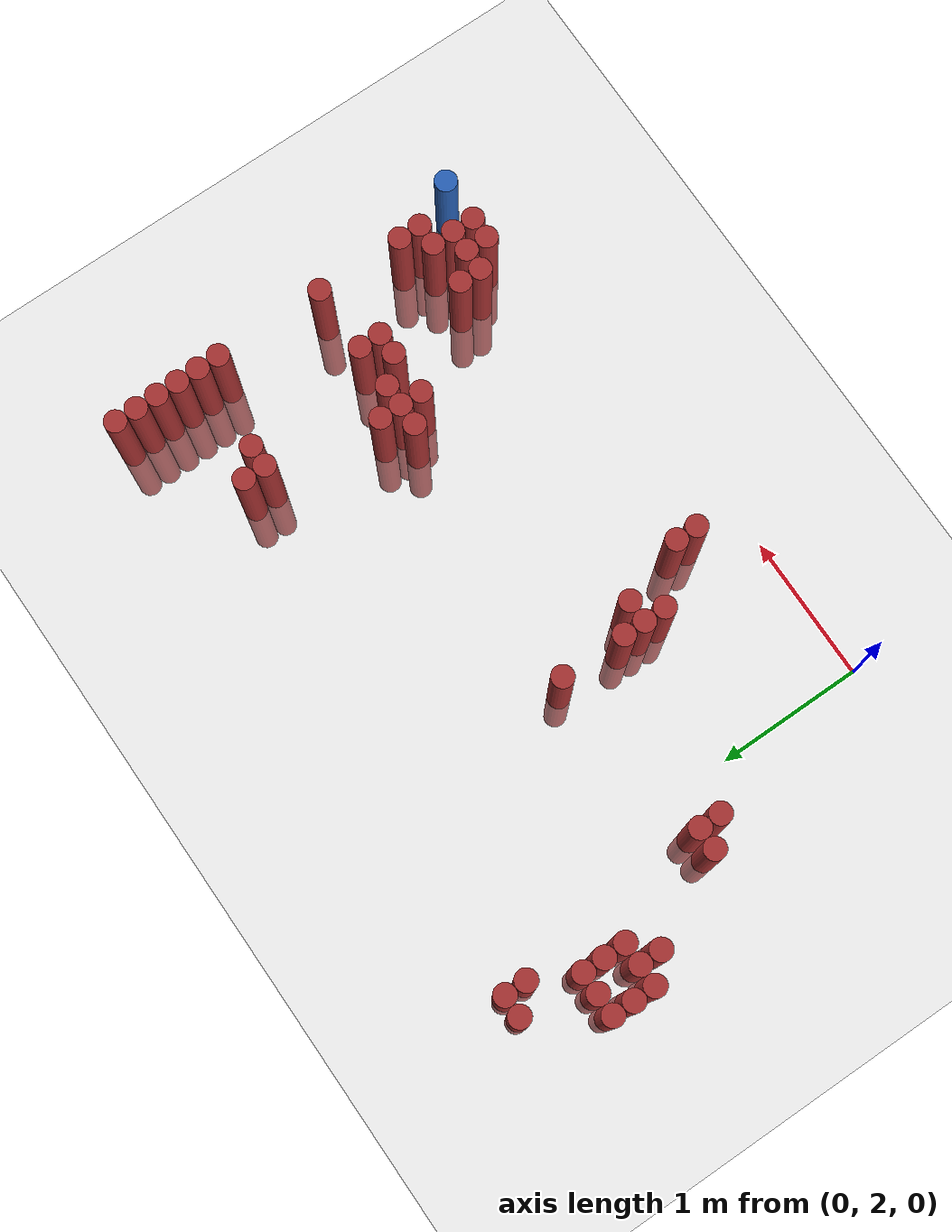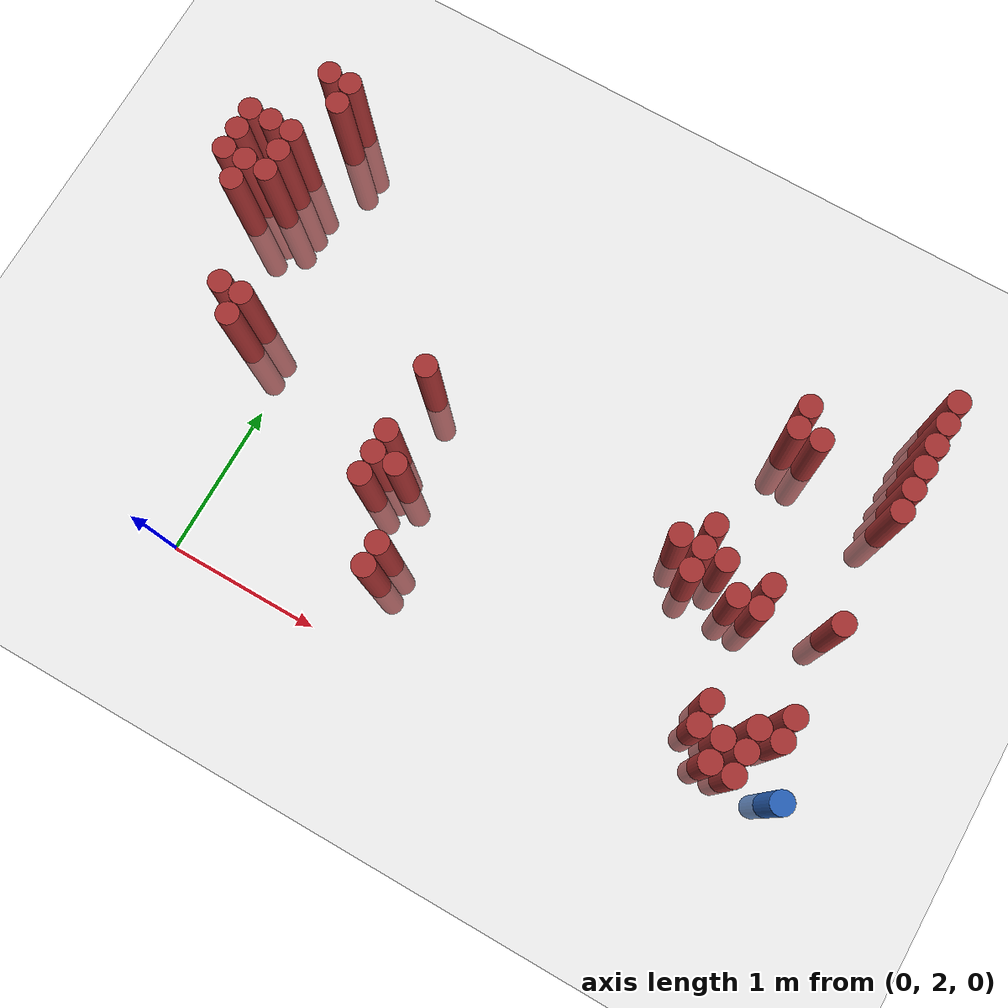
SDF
<sdf version="1.6">
 <world name="default">
  <model name="ground_plane">
   <static>1</static>
   <link name="link">
    <collision name="collision">
     <geometry><plane><normal>0 0 1</normal><size>100 100</size></plane></geometry>
     <surface><friction><ode><mu>100</mu><mu2>50</mu2></ode></friction></surface>
    </collision>
    <visual name="visual">
     <cast_shadows>0</cast_shadows>
     <geometry><plane><normal>0 0 1</normal><size>100 100</size></plane></geometry>
     <material>
      <script><uri>file://media/materials/scripts/gazebo.material</uri><name>Gazebo/Grey</name></script>
     </material>
    </visual>
   </link>
  </model>
  <model name="unit_cylinder_146">
   <static>1</static>
   <pose>3.925000 2.425000 0.000000 0.000000 0.000000 0.000000</pose>
   <link name="link">
    <inertial>
     <mass>1</mass>
     <inertia><ixx>0.145833</ixx><ixy>0</ixy><ixz>0</ixz><iyy>0.145833</iyy><iyz>0</iyz><izz>0.125</izz></inertia>
    </inertial>
    <collision name="collision">
     <geometry><cylinder><radius>0.075000</radius><length>1.5</length></cylinder></geometry>
    </collision>
    <visual name="visual">
     <geometry><cylinder><radius>0.075000</radius><length>1.5</length></cylinder></geometry>
     <material>
      <ambient>0.152000 0.379000 0.720000 1</ambient>
      <diffuse>0.152000 0.379000 0.720000 1</diffuse>
     </material>
     <material>
      <script><name>Gazebo/Grey</name><uri>file://media/materials/scripts/gazebo.material</uri></script>
     </material>
    </visual>
   </link>
  </model>
  <model name="unit_cylinder_313">
   <static>1</static>
   <pose>-0.875000 4.225000 0.000000 0.000000 0.000000 0.000000</pose>
   <link name="link">
    <inertial>
     <mass>1</mass>
     <inertia><ixx>0.145833</ixx><ixy>0</ixy><ixz>0</ixz><iyy>0.145833</iyy><iyz>0</iyz><izz>0.125</izz></inertia>
    </inertial>
    <collision name="collision">
     <geometry><cylinder><radius>0.075000</radius><length>1.5</length></cylinder></geometry>
    </collision>
    <visual name="visual">
     <geometry><cylinder><radius>0.075000</radius><length>1.5</length></cylinder></geometry>
     <material>
      <ambient>0.648000 0.192000 0.192000 1</ambient>
      <diffuse>0.648000 0.192000 0.192000 1</diffuse>
     </material>
     <material>
      <script><name>Gazebo/Grey</name><uri>file://media/materials/scripts/gazebo.material</uri></script>
     </material>
    </visual>
   </link>
  </model>
  <model name="unit_cylinder_314">
   <static>1</static>
   <pose>-0.875000 4.375000 0.000000 0.000000 0.000000 0.000000</pose>
   <link name="link">
    <inertial>
     <mass>1</mass>
     <inertia><ixx>0.145833</ixx><ixy>0</ixy><ixz>0</ixz><iyy>0.145833</iyy><iyz>0</iyz><izz>0.125</izz></inertia>
    </inertial>
    <collision name="collision">
     <geometry><cylinder><radius>0.075000</radius><length>1.5</length></cylinder></geometry>
    </collision>
    <visual name="visual">
     <geometry><cylinder><radius>0.075000</radius><length>1.5</length></cylinder></geometry>
     <material>
      <ambient>0.648000 0.192000 0.192000 1</ambient>
      <diffuse>0.648000 0.192000 0.192000 1</diffuse>
     </material>
     <material>
      <script><name>Gazebo/Grey</name><uri>file://media/materials/scripts/gazebo.material</uri></script>
     </material>
    </visual>
   </link>
  </model>
  <model name="unit_cylinder_315">
   <static>1</static>
   <pose>-0.875000 4.525000 0.000000 0.000000 0.000000 0.000000</pose>
   <link name="link">
    <inertial>
     <mass>1</mass>
     <inertia><ixx>0.145833</ixx><ixy>0</ixy><ixz>0</ixz><iyy>0.145833</iyy><iyz>0</iyz><izz>0.125</izz></inertia>
    </inertial>
    <collision name="collision">
     <geometry><cylinder><radius>0.075000</radius><length>1.5</length></cylinder></geometry>
    </collision>
    <visual name="visual">
     <geometry><cylinder><radius>0.075000</radius><length>1.5</length></cylinder></geometry>
     <material>
      <ambient>0.648000 0.192000 0.192000 1</ambient>
      <diffuse>0.648000 0.192000 0.192000 1</diffuse>
     </material>
     <material>
      <script><name>Gazebo/Grey</name><uri>file://media/materials/scripts/gazebo.material</uri></script>
     </material>
    </visual>
   </link>
  </model>
  <model name="unit_cylinder_318">
   <static>1</static>
   <pose>-0.725000 4.075000 0.000000 0.000000 0.000000 0.000000</pose>
   <link name="link">
    <inertial>
     <mass>1</mass>
     <inertia><ixx>0.145833</ixx><ixy>0</ixy><ixz>0</ixz><iyy>0.145833</iyy><iyz>0</iyz><izz>0.125</izz></inertia>
    </inertial>
    <collision name="collision">
     <geometry><cylinder><radius>0.075000</radius><length>1.5</length></cylinder></geometry>
    </collision>
    <visual name="visual">
     <geometry><cylinder><radius>0.075000</radius><length>1.5</length></cylinder></geometry>
     <material>
      <ambient>0.648000 0.192000 0.192000 1</ambient>
      <diffuse>0.648000 0.192000 0.192000 1</diffuse>
     </material>
     <material>
      <script><name>Gazebo/Grey</name><uri>file://media/materials/scripts/gazebo.material</uri></script>
     </material>
    </visual>
   </link>
  </model>
  <model name="unit_cylinder_319">
   <static>1</static>
   <pose>-0.725000 4.225000 0.000000 0.000000 0.000000 0.000000</pose>
   <link name="link">
    <inertial>
     <mass>1</mass>
     <inertia><ixx>0.145833</ixx><ixy>0</ixy><ixz>0</ixz><iyy>0.145833</iyy><iyz>0</iyz><izz>0.125</izz></inertia>
    </inertial>
    <collision name="collision">
     <geometry><cylinder><radius>0.075000</radius><length>1.5</length></cylinder></geometry>
    </collision>
    <visual name="visual">
     <geometry><cylinder><radius>0.075000</radius><length>1.5</length></cylinder></geometry>
     <material>
      <ambient>0.648000 0.192000 0.192000 1</ambient>
      <diffuse>0.648000 0.192000 0.192000 1</diffuse>
     </material>
     <material>
      <script><name>Gazebo/Grey</name><uri>file://media/materials/scripts/gazebo.material</uri></script>
     </material>
    </visual>
   </link>
  </model>
  <model name="unit_cylinder_320">
   <static>1</static>
   <pose>-0.725000 4.525000 0.000000 0.000000 0.000000 0.000000</pose>
   <link name="link">
    <inertial>
     <mass>1</mass>
     <inertia><ixx>0.145833</ixx><ixy>0</ixy><ixz>0</ixz><iyy>0.145833</iyy><iyz>0</iyz><izz>0.125</izz></inertia>
    </inertial>
    <collision name="collision">
     <geometry><cylinder><radius>0.075000</radius><length>1.5</length></cylinder></geometry>
    </collision>
    <visual name="visual">
     <geometry><cylinder><radius>0.075000</radius><length>1.5</length></cylinder></geometry>
     <material>
      <ambient>0.648000 0.192000 0.192000 1</ambient>
      <diffuse>0.648000 0.192000 0.192000 1</diffuse>
     </material>
     <material>
      <script><name>Gazebo/Grey</name><uri>file://media/materials/scripts/gazebo.material</uri></script>
     </material>
    </visual>
   </link>
  </model>
  <model name="unit_cylinder_323">
   <static>1</static>
   <pose>-0.575000 4.225000 0.000000 0.000000 0.000000 0.000000</pose>
   <link name="link">
    <inertial>
     <mass>1</mass>
     <inertia><ixx>0.145833</ixx><ixy>0</ixy><ixz>0</ixz><iyy>0.145833</iyy><iyz>0</iyz><izz>0.125</izz></inertia>
    </inertial>
    <collision name="collision">
     <geometry><cylinder><radius>0.075000</radius><length>1.5</length></cylinder></geometry>
    </collision>
    <visual name="visual">
     <geometry><cylinder><radius>0.075000</radius><length>1.5</length></cylinder></geometry>
     <material>
      <ambient>0.648000 0.192000 0.192000 1</ambient>
      <diffuse>0.648000 0.192000 0.192000 1</diffuse>
     </material>
     <material>
      <script><name>Gazebo/Grey</name><uri>file://media/materials/scripts/gazebo.material</uri></script>
     </material>
    </visual>
   </link>
  </model>
  <model name="unit_cylinder_324">
   <static>1</static>
   <pose>-0.575000 4.375000 0.000000 0.000000 0.000000 0.000000</pose>
   <link name="link">
    <inertial>
     <mass>1</mass>
     <inertia><ixx>0.145833</ixx><ixy>0</ixy><ixz>0</ixz><iyy>0.145833</iyy><iyz>0</iyz><izz>0.125</izz></inertia>
    </inertial>
    <collision name="collision">
     <geometry><cylinder><radius>0.075000</radius><length>1.5</length></cylinder></geometry>
    </collision>
    <visual name="visual">
     <geometry><cylinder><radius>0.075000</radius><length>1.5</length></cylinder></geometry>
     <material>
      <ambient>0.648000 0.192000 0.192000 1</ambient>
      <diffuse>0.648000 0.192000 0.192000 1</diffuse>
     </material>
     <material>
      <script><name>Gazebo/Grey</name><uri>file://media/materials/scripts/gazebo.material</uri></script>
     </material>
    </visual>
   </link>
  </model>
  <model name="unit_cylinder_325">
   <static>1</static>
   <pose>-0.575000 4.525000 0.000000 0.000000 0.000000 0.000000</pose>
   <link name="link">
    <inertial>
     <mass>1</mass>
     <inertia><ixx>0.145833</ixx><ixy>0</ixy><ixz>0</ixz><iyy>0.145833</iyy><iyz>0</iyz><izz>0.125</izz></inertia>
    </inertial>
    <collision name="collision">
     <geometry><cylinder><radius>0.075000</radius><length>1.5</length></cylinder></geometry>
    </collision>
    <visual name="visual">
     <geometry><cylinder><radius>0.075000</radius><length>1.5</length></cylinder></geometry>
     <material>
      <ambient>0.648000 0.192000 0.192000 1</ambient>
      <diffuse>0.648000 0.192000 0.192000 1</diffuse>
     </material>
     <material>
      <script><name>Gazebo/Grey</name><uri>file://media/materials/scripts/gazebo.material</uri></script>
     </material>
    </visual>
   </link>
  </model>
  <model name="unit_cylinder_326">
   <static>1</static>
   <pose>-0.575000 4.975000 0.000000 0.000000 0.000000 0.000000</pose>
   <link name="link">
    <inertial>
     <mass>1</mass>
     <inertia><ixx>0.145833</ixx><ixy>0</ixy><ixz>0</ixz><iyy>0.145833</iyy><iyz>0</iyz><izz>0.125</izz></inertia>
    </inertial>
    <collision name="collision">
     <geometry><cylinder><radius>0.075000</radius><length>1.5</length></cylinder></geometry>
    </collision>
    <visual name="visual">
     <geometry><cylinder><radius>0.075000</radius><length>1.5</length></cylinder></geometry>
     <material>
      <ambient>0.648000 0.192000 0.192000 1</ambient>
      <diffuse>0.648000 0.192000 0.192000 1</diffuse>
     </material>
     <material>
      <script><name>Gazebo/Grey</name><uri>file://media/materials/scripts/gazebo.material</uri></script>
     </material>
    </visual>
   </link>
  </model>
  <model name="unit_cylinder_327">
   <static>1</static>
   <pose>-0.425000 3.475000 0.000000 0.000000 0.000000 0.000000</pose>
   <link name="link">
    <inertial>
     <mass>1</mass>
     <inertia><ixx>0.145833</ixx><ixy>0</ixy><ixz>0</ixz><iyy>0.145833</iyy><iyz>0</iyz><izz>0.125</izz></inertia>
    </inertial>
    <collision name="collision">
     <geometry><cylinder><radius>0.075000</radius><length>1.5</length></cylinder></geometry>
    </collision>
    <visual name="visual">
     <geometry><cylinder><radius>0.075000</radius><length>1.5</length></cylinder></geometry>
     <material>
      <ambient>0.648000 0.192000 0.192000 1</ambient>
      <diffuse>0.648000 0.192000 0.192000 1</diffuse>
     </material>
     <material>
      <script><name>Gazebo/Grey</name><uri>file://media/materials/scripts/gazebo.material</uri></script>
     </material>
    </visual>
   </link>
  </model>
  <model name="unit_cylinder_328">
   <static>1</static>
   <pose>-0.425000 4.825000 0.000000 0.000000 0.000000 0.000000</pose>
   <link name="link">
    <inertial>
     <mass>1</mass>
     <inertia><ixx>0.145833</ixx><ixy>0</ixy><ixz>0</ixz><iyy>0.145833</iyy><iyz>0</iyz><izz>0.125</izz></inertia>
    </inertial>
    <collision name="collision">
     <geometry><cylinder><radius>0.075000</radius><length>1.5</length></cylinder></geometry>
    </collision>
    <visual name="visual">
     <geometry><cylinder><radius>0.075000</radius><length>1.5</length></cylinder></geometry>
     <material>
      <ambient>0.648000 0.192000 0.192000 1</ambient>
      <diffuse>0.648000 0.192000 0.192000 1</diffuse>
     </material>
     <material>
      <script><name>Gazebo/Grey</name><uri>file://media/materials/scripts/gazebo.material</uri></script>
     </material>
    </visual>
   </link>
  </model>
  <model name="unit_cylinder_329">
   <static>1</static>
   <pose>-0.425000 4.975000 0.000000 0.000000 0.000000 0.000000</pose>
   <link name="link">
    <inertial>
     <mass>1</mass>
     <inertia><ixx>0.145833</ixx><ixy>0</ixy><ixz>0</ixz><iyy>0.145833</iyy><iyz>0</iyz><izz>0.125</izz></inertia>
    </inertial>
    <collision name="collision">
     <geometry><cylinder><radius>0.075000</radius><length>1.5</length></cylinder></geometry>
    </collision>
    <visual name="visual">
     <geometry><cylinder><radius>0.075000</radius><length>1.5</length></cylinder></geometry>
     <material>
      <ambient>0.648000 0.192000 0.192000 1</ambient>
      <diffuse>0.648000 0.192000 0.192000 1</diffuse>
     </material>
     <material>
      <script><name>Gazebo/Grey</name><uri>file://media/materials/scripts/gazebo.material</uri></script>
     </material>
    </visual>
   </link>
  </model>
  <model name="unit_cylinder_332">
   <static>1</static>
   <pose>-0.275000 3.325000 0.000000 0.000000 0.000000 0.000000</pose>
   <link name="link">
    <inertial>
     <mass>1</mass>
     <inertia><ixx>0.145833</ixx><ixy>0</ixy><ixz>0</ixz><iyy>0.145833</iyy><iyz>0</iyz><izz>0.125</izz></inertia>
    </inertial>
    <collision name="collision">
     <geometry><cylinder><radius>0.075000</radius><length>1.5</length></cylinder></geometry>
    </collision>
    <visual name="visual">
     <geometry><cylinder><radius>0.075000</radius><length>1.5</length></cylinder></geometry>
     <material>
      <ambient>0.648000 0.192000 0.192000 1</ambient>
      <diffuse>0.648000 0.192000 0.192000 1</diffuse>
     </material>
     <material>
      <script><name>Gazebo/Grey</name><uri>file://media/materials/scripts/gazebo.material</uri></script>
     </material>
    </visual>
   </link>
  </model>
  <model name="unit_cylinder_333">
   <static>1</static>
   <pose>-0.275000 3.475000 0.000000 0.000000 0.000000 0.000000</pose>
   <link name="link">
    <inertial>
     <mass>1</mass>
     <inertia><ixx>0.145833</ixx><ixy>0</ixy><ixz>0</ixz><iyy>0.145833</iyy><iyz>0</iyz><izz>0.125</izz></inertia>
    </inertial>
    <collision name="collision">
     <geometry><cylinder><radius>0.075000</radius><length>1.5</length></cylinder></geometry>
    </collision>
    <visual name="visual">
     <geometry><cylinder><radius>0.075000</radius><length>1.5</length></cylinder></geometry>
     <material>
      <ambient>0.648000 0.192000 0.192000 1</ambient>
      <diffuse>0.648000 0.192000 0.192000 1</diffuse>
     </material>
     <material>
      <script><name>Gazebo/Grey</name><uri>file://media/materials/scripts/gazebo.material</uri></script>
     </material>
    </visual>
   </link>
  </model>
  <model name="unit_cylinder_349">
   <static>1</static>
   <pose>0.925000 2.875000 0.000000 0.000000 0.000000 0.000000</pose>
   <link name="link">
    <inertial>
     <mass>1</mass>
     <inertia><ixx>0.145833</ixx><ixy>0</ixy><ixz>0</ixz><iyy>0.145833</iyy><iyz>0</iyz><izz>0.125</izz></inertia>
    </inertial>
    <collision name="collision">
     <geometry><cylinder><radius>0.075000</radius><length>1.5</length></cylinder></geometry>
    </collision>
    <visual name="visual">
     <geometry><cylinder><radius>0.075000</radius><length>1.5</length></cylinder></geometry>
     <material>
      <ambient>0.648000 0.192000 0.192000 1</ambient>
      <diffuse>0.648000 0.192000 0.192000 1</diffuse>
     </material>
     <material>
      <script><name>Gazebo/Grey</name><uri>file://media/materials/scripts/gazebo.material</uri></script>
     </material>
    </visual>
   </link>
  </model>
  <model name="unit_cylinder_350">
   <static>1</static>
   <pose>0.925000 3.025000 0.000000 0.000000 0.000000 0.000000</pose>
   <link name="link">
    <inertial>
     <mass>1</mass>
     <inertia><ixx>0.145833</ixx><ixy>0</ixy><ixz>0</ixz><iyy>0.145833</iyy><iyz>0</iyz><izz>0.125</izz></inertia>
    </inertial>
    <collision name="collision">
     <geometry><cylinder><radius>0.075000</radius><length>1.5</length></cylinder></geometry>
    </collision>
    <visual name="visual">
     <geometry><cylinder><radius>0.075000</radius><length>1.5</length></cylinder></geometry>
     <material>
      <ambient>0.648000 0.192000 0.192000 1</ambient>
      <diffuse>0.648000 0.192000 0.192000 1</diffuse>
     </material>
     <material>
      <script><name>Gazebo/Grey</name><uri>file://media/materials/scripts/gazebo.material</uri></script>
     </material>
    </visual>
   </link>
  </model>
  <model name="unit_cylinder_351">
   <static>1</static>
   <pose>0.925000 3.175000 0.000000 0.000000 0.000000 0.000000</pose>
   <link name="link">
    <inertial>
     <mass>1</mass>
     <inertia><ixx>0.145833</ixx><ixy>0</ixy><ixz>0</ixz><iyy>0.145833</iyy><iyz>0</iyz><izz>0.125</izz></inertia>
    </inertial>
    <collision name="collision">
     <geometry><cylinder><radius>0.075000</radius><length>1.5</length></cylinder></geometry>
    </collision>
    <visual name="visual">
     <geometry><cylinder><radius>0.075000</radius><length>1.5</length></cylinder></geometry>
     <material>
      <ambient>0.648000 0.192000 0.192000 1</ambient>
      <diffuse>0.648000 0.192000 0.192000 1</diffuse>
     </material>
     <material>
      <script><name>Gazebo/Grey</name><uri>file://media/materials/scripts/gazebo.material</uri></script>
     </material>
    </visual>
   </link>
  </model>
  <model name="unit_cylinder_352">
   <static>1</static>
   <pose>0.925000 3.625000 0.000000 0.000000 0.000000 0.000000</pose>
   <link name="link">
    <inertial>
     <mass>1</mass>
     <inertia><ixx>0.145833</ixx><ixy>0</ixy><ixz>0</ixz><iyy>0.145833</iyy><iyz>0</iyz><izz>0.125</izz></inertia>
    </inertial>
    <collision name="collision">
     <geometry><cylinder><radius>0.075000</radius><length>1.5</length></cylinder></geometry>
    </collision>
    <visual name="visual">
     <geometry><cylinder><radius>0.075000</radius><length>1.5</length></cylinder></geometry>
     <material>
      <ambient>0.648000 0.192000 0.192000 1</ambient>
      <diffuse>0.648000 0.192000 0.192000 1</diffuse>
     </material>
     <material>
      <script><name>Gazebo/Grey</name><uri>file://media/materials/scripts/gazebo.material</uri></script>
     </material>
    </visual>
   </link>
  </model>
  <model name="unit_cylinder_361">
   <static>1</static>
   <pose>1.075000 3.025000 0.000000 0.000000 0.000000 0.000000</pose>
   <link name="link">
    <inertial>
     <mass>1</mass>
     <inertia><ixx>0.145833</ixx><ixy>0</ixy><ixz>0</ixz><iyy>0.145833</iyy><iyz>0</iyz><izz>0.125</izz></inertia>
    </inertial>
    <collision name="collision">
     <geometry><cylinder><radius>0.075000</radius><length>1.5</length></cylinder></geometry>
    </collision>
    <visual name="visual">
     <geometry><cylinder><radius>0.075000</radius><length>1.5</length></cylinder></geometry>
     <material>
      <ambient>0.648000 0.192000 0.192000 1</ambient>
      <diffuse>0.648000 0.192000 0.192000 1</diffuse>
     </material>
     <material>
      <script><name>Gazebo/Grey</name><uri>file://media/materials/scripts/gazebo.material</uri></script>
     </material>
    </visual>
   </link>
  </model>
  <model name="unit_cylinder_369">
   <static>1</static>
   <pose>1.225000 2.425000 0.000000 0.000000 0.000000 0.000000</pose>
   <link name="link">
    <inertial>
     <mass>1</mass>
     <inertia><ixx>0.145833</ixx><ixy>0</ixy><ixz>0</ixz><iyy>0.145833</iyy><iyz>0</iyz><izz>0.125</izz></inertia>
    </inertial>
    <collision name="collision">
     <geometry><cylinder><radius>0.075000</radius><length>1.5</length></cylinder></geometry>
    </collision>
    <visual name="visual">
     <geometry><cylinder><radius>0.075000</radius><length>1.5</length></cylinder></geometry>
     <material>
      <ambient>0.648000 0.192000 0.192000 1</ambient>
      <diffuse>0.648000 0.192000 0.192000 1</diffuse>
     </material>
     <material>
      <script><name>Gazebo/Grey</name><uri>file://media/materials/scripts/gazebo.material</uri></script>
     </material>
    </visual>
   </link>
  </model>
  <model name="unit_cylinder_370">
   <static>1</static>
   <pose>1.225000 2.575000 0.000000 0.000000 0.000000 0.000000</pose>
   <link name="link">
    <inertial>
     <mass>1</mass>
     <inertia><ixx>0.145833</ixx><ixy>0</ixy><ixz>0</ixz><iyy>0.145833</iyy><iyz>0</iyz><izz>0.125</izz></inertia>
    </inertial>
    <collision name="collision">
     <geometry><cylinder><radius>0.075000</radius><length>1.5</length></cylinder></geometry>
    </collision>
    <visual name="visual">
     <geometry><cylinder><radius>0.075000</radius><length>1.5</length></cylinder></geometry>
     <material>
      <ambient>0.648000 0.192000 0.192000 1</ambient>
      <diffuse>0.648000 0.192000 0.192000 1</diffuse>
     </material>
     <material>
      <script><name>Gazebo/Grey</name><uri>file://media/materials/scripts/gazebo.material</uri></script>
     </material>
    </visual>
   </link>
  </model>
  <model name="unit_cylinder_400">
   <static>1</static>
   <pose>2.725000 3.475000 0.000000 0.000000 0.000000 0.000000</pose>
   <link name="link">
    <inertial>
     <mass>1</mass>
     <inertia><ixx>0.145833</ixx><ixy>0</ixy><ixz>0</ixz><iyy>0.145833</iyy><iyz>0</iyz><izz>0.125</izz></inertia>
    </inertial>
    <collision name="collision">
     <geometry><cylinder><radius>0.075000</radius><length>1.5</length></cylinder></geometry>
    </collision>
    <visual name="visual">
     <geometry><cylinder><radius>0.075000</radius><length>1.5</length></cylinder></geometry>
     <material>
      <ambient>0.648000 0.192000 0.192000 1</ambient>
      <diffuse>0.648000 0.192000 0.192000 1</diffuse>
     </material>
     <material>
      <script><name>Gazebo/Grey</name><uri>file://media/materials/scripts/gazebo.material</uri></script>
     </material>
    </visual>
   </link>
  </model>
  <model name="unit_cylinder_404">
   <static>1</static>
   <pose>2.875000 3.325000 0.000000 0.000000 0.000000 0.000000</pose>
   <link name="link">
    <inertial>
     <mass>1</mass>
     <inertia><ixx>0.145833</ixx><ixy>0</ixy><ixz>0</ixz><iyy>0.145833</iyy><iyz>0</iyz><izz>0.125</izz></inertia>
    </inertial>
    <collision name="collision">
     <geometry><cylinder><radius>0.075000</radius><length>1.5</length></cylinder></geometry>
    </collision>
    <visual name="visual">
     <geometry><cylinder><radius>0.075000</radius><length>1.5</length></cylinder></geometry>
     <material>
      <ambient>0.648000 0.192000 0.192000 1</ambient>
      <diffuse>0.648000 0.192000 0.192000 1</diffuse>
     </material>
     <material>
      <script><name>Gazebo/Grey</name><uri>file://media/materials/scripts/gazebo.material</uri></script>
     </material>
    </visual>
   </link>
  </model>
  <model name="unit_cylinder_405">
   <static>1</static>
   <pose>2.875000 3.475000 0.000000 0.000000 0.000000 0.000000</pose>
   <link name="link">
    <inertial>
     <mass>1</mass>
     <inertia><ixx>0.145833</ixx><ixy>0</ixy><ixz>0</ixz><iyy>0.145833</iyy><iyz>0</iyz><izz>0.125</izz></inertia>
    </inertial>
    <collision name="collision">
     <geometry><cylinder><radius>0.075000</radius><length>1.5</length></cylinder></geometry>
    </collision>
    <visual name="visual">
     <geometry><cylinder><radius>0.075000</radius><length>1.5</length></cylinder></geometry>
     <material>
      <ambient>0.648000 0.192000 0.192000 1</ambient>
      <diffuse>0.648000 0.192000 0.192000 1</diffuse>
     </material>
     <material>
      <script><name>Gazebo/Grey</name><uri>file://media/materials/scripts/gazebo.material</uri></script>
     </material>
    </visual>
   </link>
  </model>
  <model name="unit_cylinder_406">
   <static>1</static>
   <pose>2.875000 3.625000 0.000000 0.000000 0.000000 0.000000</pose>
   <link name="link">
    <inertial>
     <mass>1</mass>
     <inertia><ixx>0.145833</ixx><ixy>0</ixy><ixz>0</ixz><iyy>0.145833</iyy><iyz>0</iyz><izz>0.125</izz></inertia>
    </inertial>
    <collision name="collision">
     <geometry><cylinder><radius>0.075000</radius><length>1.5</length></cylinder></geometry>
    </collision>
    <visual name="visual">
     <geometry><cylinder><radius>0.075000</radius><length>1.5</length></cylinder></geometry>
     <material>
      <ambient>0.648000 0.192000 0.192000 1</ambient>
      <diffuse>0.648000 0.192000 0.192000 1</diffuse>
     </material>
     <material>
      <script><name>Gazebo/Grey</name><uri>file://media/materials/scripts/gazebo.material</uri></script>
     </material>
    </visual>
   </link>
  </model>
  <model name="unit_cylinder_408">
   <static>1</static>
   <pose>3.025000 3.475000 0.000000 0.000000 0.000000 0.000000</pose>
   <link name="link">
    <inertial>
     <mass>1</mass>
     <inertia><ixx>0.145833</ixx><ixy>0</ixy><ixz>0</ixz><iyy>0.145833</iyy><iyz>0</iyz><izz>0.125</izz></inertia>
    </inertial>
    <collision name="collision">
     <geometry><cylinder><radius>0.075000</radius><length>1.5</length></cylinder></geometry>
    </collision>
    <visual name="visual">
     <geometry><cylinder><radius>0.075000</radius><length>1.5</length></cylinder></geometry>
     <material>
      <ambient>0.648000 0.192000 0.192000 1</ambient>
      <diffuse>0.648000 0.192000 0.192000 1</diffuse>
     </material>
     <material>
      <script><name>Gazebo/Grey</name><uri>file://media/materials/scripts/gazebo.material</uri></script>
     </material>
    </visual>
   </link>
  </model>
  <model name="unit_cylinder_409">
   <static>1</static>
   <pose>3.025000 4.375000 0.000000 0.000000 0.000000 0.000000</pose>
   <link name="link">
    <inertial>
     <mass>1</mass>
     <inertia><ixx>0.145833</ixx><ixy>0</ixy><ixz>0</ixz><iyy>0.145833</iyy><iyz>0</iyz><izz>0.125</izz></inertia>
    </inertial>
    <collision name="collision">
     <geometry><cylinder><radius>0.075000</radius><length>1.5</length></cylinder></geometry>
    </collision>
    <visual name="visual">
     <geometry><cylinder><radius>0.075000</radius><length>1.5</length></cylinder></geometry>
     <material>
      <ambient>0.648000 0.192000 0.192000 1</ambient>
      <diffuse>0.648000 0.192000 0.192000 1</diffuse>
     </material>
     <material>
      <script><name>Gazebo/Grey</name><uri>file://media/materials/scripts/gazebo.material</uri></script>
     </material>
    </visual>
   </link>
  </model>
  <model name="unit_cylinder_410">
   <static>1</static>
   <pose>3.025000 4.525000 0.000000 0.000000 0.000000 0.000000</pose>
   <link name="link">
    <inertial>
     <mass>1</mass>
     <inertia><ixx>0.145833</ixx><ixy>0</ixy><ixz>0</ixz><iyy>0.145833</iyy><iyz>0</iyz><izz>0.125</izz></inertia>
    </inertial>
    <collision name="collision">
     <geometry><cylinder><radius>0.075000</radius><length>1.5</length></cylinder></geometry>
    </collision>
    <visual name="visual">
     <geometry><cylinder><radius>0.075000</radius><length>1.5</length></cylinder></geometry>
     <material>
      <ambient>0.648000 0.192000 0.192000 1</ambient>
      <diffuse>0.648000 0.192000 0.192000 1</diffuse>
     </material>
     <material>
      <script><name>Gazebo/Grey</name><uri>file://media/materials/scripts/gazebo.material</uri></script>
     </material>
    </visual>
   </link>
  </model>
  <model name="unit_cylinder_412">
   <static>1</static>
   <pose>3.175000 3.325000 0.000000 0.000000 0.000000 0.000000</pose>
   <link name="link">
    <inertial>
     <mass>1</mass>
     <inertia><ixx>0.145833</ixx><ixy>0</ixy><ixz>0</ixz><iyy>0.145833</iyy><iyz>0</iyz><izz>0.125</izz></inertia>
    </inertial>
    <collision name="collision">
     <geometry><cylinder><radius>0.075000</radius><length>1.5</length></cylinder></geometry>
    </collision>
    <visual name="visual">
     <geometry><cylinder><radius>0.075000</radius><length>1.5</length></cylinder></geometry>
     <material>
      <ambient>0.648000 0.192000 0.192000 1</ambient>
      <diffuse>0.648000 0.192000 0.192000 1</diffuse>
     </material>
     <material>
      <script><name>Gazebo/Grey</name><uri>file://media/materials/scripts/gazebo.material</uri></script>
     </material>
    </visual>
   </link>
  </model>
  <model name="unit_cylinder_413">
   <static>1</static>
   <pose>3.175000 4.375000 0.000000 0.000000 0.000000 0.000000</pose>
   <link name="link">
    <inertial>
     <mass>1</mass>
     <inertia><ixx>0.145833</ixx><ixy>0</ixy><ixz>0</ixz><iyy>0.145833</iyy><iyz>0</iyz><izz>0.125</izz></inertia>
    </inertial>
    <collision name="collision">
     <geometry><cylinder><radius>0.075000</radius><length>1.5</length></cylinder></geometry>
    </collision>
    <visual name="visual">
     <geometry><cylinder><radius>0.075000</radius><length>1.5</length></cylinder></geometry>
     <material>
      <ambient>0.648000 0.192000 0.192000 1</ambient>
      <diffuse>0.648000 0.192000 0.192000 1</diffuse>
     </material>
     <material>
      <script><name>Gazebo/Grey</name><uri>file://media/materials/scripts/gazebo.material</uri></script>
     </material>
    </visual>
   </link>
  </model>
  <model name="unit_cylinder_416">
   <static>1</static>
   <pose>3.325000 2.575000 0.000000 0.000000 0.000000 0.000000</pose>
   <link name="link">
    <inertial>
     <mass>1</mass>
     <inertia><ixx>0.145833</ixx><ixy>0</ixy><ixz>0</ixz><iyy>0.145833</iyy><iyz>0</iyz><izz>0.125</izz></inertia>
    </inertial>
    <collision name="collision">
     <geometry><cylinder><radius>0.075000</radius><length>1.5</length></cylinder></geometry>
    </collision>
    <visual name="visual">
     <geometry><cylinder><radius>0.075000</radius><length>1.5</length></cylinder></geometry>
     <material>
      <ambient>0.648000 0.192000 0.192000 1</ambient>
      <diffuse>0.648000 0.192000 0.192000 1</diffuse>
     </material>
     <material>
      <script><name>Gazebo/Grey</name><uri>file://media/materials/scripts/gazebo.material</uri></script>
     </material>
    </visual>
   </link>
  </model>
  <model name="unit_cylinder_417">
   <static>1</static>
   <pose>3.325000 2.725000 0.000000 0.000000 0.000000 0.000000</pose>
   <link name="link">
    <inertial>
     <mass>1</mass>
     <inertia><ixx>0.145833</ixx><ixy>0</ixy><ixz>0</ixz><iyy>0.145833</iyy><iyz>0</iyz><izz>0.125</izz></inertia>
    </inertial>
    <collision name="collision">
     <geometry><cylinder><radius>0.075000</radius><length>1.5</length></cylinder></geometry>
    </collision>
    <visual name="visual">
     <geometry><cylinder><radius>0.075000</radius><length>1.5</length></cylinder></geometry>
     <material>
      <ambient>0.648000 0.192000 0.192000 1</ambient>
      <diffuse>0.648000 0.192000 0.192000 1</diffuse>
     </material>
     <material>
      <script><name>Gazebo/Grey</name><uri>file://media/materials/scripts/gazebo.material</uri></script>
     </material>
    </visual>
   </link>
  </model>
  <model name="unit_cylinder_418">
   <static>1</static>
   <pose>3.325000 3.325000 0.000000 0.000000 0.000000 0.000000</pose>
   <link name="link">
    <inertial>
     <mass>1</mass>
     <inertia><ixx>0.145833</ixx><ixy>0</ixy><ixz>0</ixz><iyy>0.145833</iyy><iyz>0</iyz><izz>0.125</izz></inertia>
    </inertial>
    <collision name="collision">
     <geometry><cylinder><radius>0.075000</radius><length>1.5</length></cylinder></geometry>
    </collision>
    <visual name="visual">
     <geometry><cylinder><radius>0.075000</radius><length>1.5</length></cylinder></geometry>
     <material>
      <ambient>0.648000 0.192000 0.192000 1</ambient>
      <diffuse>0.648000 0.192000 0.192000 1</diffuse>
     </material>
     <material>
      <script><name>Gazebo/Grey</name><uri>file://media/materials/scripts/gazebo.material</uri></script>
     </material>
    </visual>
   </link>
  </model>
  <model name="unit_cylinder_419">
   <static>1</static>
   <pose>3.325000 3.475000 0.000000 0.000000 0.000000 0.000000</pose>
   <link name="link">
    <inertial>
     <mass>1</mass>
     <inertia><ixx>0.145833</ixx><ixy>0</ixy><ixz>0</ixz><iyy>0.145833</iyy><iyz>0</iyz><izz>0.125</izz></inertia>
    </inertial>
    <collision name="collision">
     <geometry><cylinder><radius>0.075000</radius><length>1.5</length></cylinder></geometry>
    </collision>
    <visual name="visual">
     <geometry><cylinder><radius>0.075000</radius><length>1.5</length></cylinder></geometry>
     <material>
      <ambient>0.648000 0.192000 0.192000 1</ambient>
      <diffuse>0.648000 0.192000 0.192000 1</diffuse>
     </material>
     <material>
      <script><name>Gazebo/Grey</name><uri>file://media/materials/scripts/gazebo.material</uri></script>
     </material>
    </visual>
   </link>
  </model>
  <model name="unit_cylinder_422">
   <static>1</static>
   <pose>3.475000 2.425000 0.000000 0.000000 0.000000 0.000000</pose>
   <link name="link">
    <inertial>
     <mass>1</mass>
     <inertia><ixx>0.145833</ixx><ixy>0</ixy><ixz>0</ixz><iyy>0.145833</iyy><iyz>0</iyz><izz>0.125</izz></inertia>
    </inertial>
    <collision name="collision">
     <geometry><cylinder><radius>0.075000</radius><length>1.5</length></cylinder></geometry>
    </collision>
    <visual name="visual">
     <geometry><cylinder><radius>0.075000</radius><length>1.5</length></cylinder></geometry>
     <material>
      <ambient>0.648000 0.192000 0.192000 1</ambient>
      <diffuse>0.648000 0.192000 0.192000 1</diffuse>
     </material>
     <material>
      <script><name>Gazebo/Grey</name><uri>file://media/materials/scripts/gazebo.material</uri></script>
     </material>
    </visual>
   </link>
  </model>
  <model name="unit_cylinder_423">
   <static>1</static>
   <pose>3.475000 2.575000 0.000000 0.000000 0.000000 0.000000</pose>
   <link name="link">
    <inertial>
     <mass>1</mass>
     <inertia><ixx>0.145833</ixx><ixy>0</ixy><ixz>0</ixz><iyy>0.145833</iyy><iyz>0</iyz><izz>0.125</izz></inertia>
    </inertial>
    <collision name="collision">
     <geometry><cylinder><radius>0.075000</radius><length>1.5</length></cylinder></geometry>
    </collision>
    <visual name="visual">
     <geometry><cylinder><radius>0.075000</radius><length>1.5</length></cylinder></geometry>
     <material>
      <ambient>0.648000 0.192000 0.192000 1</ambient>
      <diffuse>0.648000 0.192000 0.192000 1</diffuse>
     </material>
     <material>
      <script><name>Gazebo/Grey</name><uri>file://media/materials/scripts/gazebo.material</uri></script>
     </material>
    </visual>
   </link>
  </model>
  <model name="unit_cylinder_427">
   <static>1</static>
   <pose>3.625000 2.425000 0.000000 0.000000 0.000000 0.000000</pose>
   <link name="link">
    <inertial>
     <mass>1</mass>
     <inertia><ixx>0.145833</ixx><ixy>0</ixy><ixz>0</ixz><iyy>0.145833</iyy><iyz>0</iyz><izz>0.125</izz></inertia>
    </inertial>
    <collision name="collision">
     <geometry><cylinder><radius>0.075000</radius><length>1.5</length></cylinder></geometry>
    </collision>
    <visual name="visual">
     <geometry><cylinder><radius>0.075000</radius><length>1.5</length></cylinder></geometry>
     <material>
      <ambient>0.648000 0.192000 0.192000 1</ambient>
      <diffuse>0.648000 0.192000 0.192000 1</diffuse>
     </material>
     <material>
      <script><name>Gazebo/Grey</name><uri>file://media/materials/scripts/gazebo.material</uri></script>
     </material>
    </visual>
   </link>
  </model>
  <model name="unit_cylinder_428">
   <static>1</static>
   <pose>3.625000 2.575000 0.000000 0.000000 0.000000 0.000000</pose>
   <link name="link">
    <inertial>
     <mass>1</mass>
     <inertia><ixx>0.145833</ixx><ixy>0</ixy><ixz>0</ixz><iyy>0.145833</iyy><iyz>0</iyz><izz>0.125</izz></inertia>
    </inertial>
    <collision name="collision">
     <geometry><cylinder><radius>0.075000</radius><length>1.5</length></cylinder></geometry>
    </collision>
    <visual name="visual">
     <geometry><cylinder><radius>0.075000</radius><length>1.5</length></cylinder></geometry>
     <material>
      <ambient>0.648000 0.192000 0.192000 1</ambient>
      <diffuse>0.648000 0.192000 0.192000 1</diffuse>
     </material>
     <material>
      <script><name>Gazebo/Grey</name><uri>file://media/materials/scripts/gazebo.material</uri></script>
     </material>
    </visual>
   </link>
  </model>
  <model name="unit_cylinder_429">
   <static>1</static>
   <pose>3.625000 2.725000 0.000000 0.000000 0.000000 0.000000</pose>
   <link name="link">
    <inertial>
     <mass>1</mass>
     <inertia><ixx>0.145833</ixx><ixy>0</ixy><ixz>0</ixz><iyy>0.145833</iyy><iyz>0</iyz><izz>0.125</izz></inertia>
    </inertial>
    <collision name="collision">
     <geometry><cylinder><radius>0.075000</radius><length>1.5</length></cylinder></geometry>
    </collision>
    <visual name="visual">
     <geometry><cylinder><radius>0.075000</radius><length>1.5</length></cylinder></geometry>
     <material>
      <ambient>0.648000 0.192000 0.192000 1</ambient>
      <diffuse>0.648000 0.192000 0.192000 1</diffuse>
     </material>
     <material>
      <script><name>Gazebo/Grey</name><uri>file://media/materials/scripts/gazebo.material</uri></script>
     </material>
    </visual>
   </link>
  </model>
  <model name="unit_cylinder_445">
   <static>1</static>
   <pose>3.775000 2.725000 0.000000 0.000000 0.000000 0.000000</pose>
   <link name="link">
    <inertial>
     <mass>1</mass>
     <inertia><ixx>0.145833</ixx><ixy>0</ixy><ixz>0</ixz><iyy>0.145833</iyy><iyz>0</iyz><izz>0.125</izz></inertia>
    </inertial>
    <collision name="collision">
     <geometry><cylinder><radius>0.075000</radius><length>1.5</length></cylinder></geometry>
    </collision>
    <visual name="visual">
     <geometry><cylinder><radius>0.075000</radius><length>1.5</length></cylinder></geometry>
     <material>
      <ambient>0.648000 0.192000 0.192000 1</ambient>
      <diffuse>0.648000 0.192000 0.192000 1</diffuse>
     </material>
     <material>
      <script><name>Gazebo/Grey</name><uri>file://media/materials/scripts/gazebo.material</uri></script>
     </material>
    </visual>
   </link>
  </model>
  <model name="unit_cylinder_446">
   <static>1</static>
   <pose>3.775000 2.875000 0.000000 0.000000 0.000000 0.000000</pose>
   <link name="link">
    <inertial>
     <mass>1</mass>
     <inertia><ixx>0.145833</ixx><ixy>0</ixy><ixz>0</ixz><iyy>0.145833</iyy><iyz>0</iyz><izz>0.125</izz></inertia>
    </inertial>
    <collision name="collision">
     <geometry><cylinder><radius>0.075000</radius><length>1.5</length></cylinder></geometry>
    </collision>
    <visual name="visual">
     <geometry><cylinder><radius>0.075000</radius><length>1.5</length></cylinder></geometry>
     <material>
      <ambient>0.648000 0.192000 0.192000 1</ambient>
      <diffuse>0.648000 0.192000 0.192000 1</diffuse>
     </material>
     <material>
      <script><name>Gazebo/Grey</name><uri>file://media/materials/scripts/gazebo.material</uri></script>
     </material>
    </visual>
   </link>
  </model>
  <model name="unit_cylinder_447">
   <static>1</static>
   <pose>3.775000 3.475000 0.000000 0.000000 0.000000 0.000000</pose>
   <link name="link">
    <inertial>
     <mass>1</mass>
     <inertia><ixx>0.145833</ixx><ixy>0</ixy><ixz>0</ixz><iyy>0.145833</iyy><iyz>0</iyz><izz>0.125</izz></inertia>
    </inertial>
    <collision name="collision">
     <geometry><cylinder><radius>0.075000</radius><length>1.5</length></cylinder></geometry>
    </collision>
    <visual name="visual">
     <geometry><cylinder><radius>0.075000</radius><length>1.5</length></cylinder></geometry>
     <material>
      <ambient>0.648000 0.192000 0.192000 1</ambient>
      <diffuse>0.648000 0.192000 0.192000 1</diffuse>
     </material>
     <material>
      <script><name>Gazebo/Grey</name><uri>file://media/materials/scripts/gazebo.material</uri></script>
     </material>
    </visual>
   </link>
  </model>
  <model name="unit_cylinder_448">
   <static>1</static>
   <pose>3.775000 4.225000 0.000000 0.000000 0.000000 0.000000</pose>
   <link name="link">
    <inertial>
     <mass>1</mass>
     <inertia><ixx>0.145833</ixx><ixy>0</ixy><ixz>0</ixz><iyy>0.145833</iyy><iyz>0</iyz><izz>0.125</izz></inertia>
    </inertial>
    <collision name="collision">
     <geometry><cylinder><radius>0.075000</radius><length>1.5</length></cylinder></geometry>
    </collision>
    <visual name="visual">
     <geometry><cylinder><radius>0.075000</radius><length>1.5</length></cylinder></geometry>
     <material>
      <ambient>0.648000 0.192000 0.192000 1</ambient>
      <diffuse>0.648000 0.192000 0.192000 1</diffuse>
     </material>
     <material>
      <script><name>Gazebo/Grey</name><uri>file://media/materials/scripts/gazebo.material</uri></script>
     </material>
    </visual>
   </link>
  </model>
  <model name="unit_cylinder_449">
   <static>1</static>
   <pose>3.775000 4.375000 0.000000 0.000000 0.000000 0.000000</pose>
   <link name="link">
    <inertial>
     <mass>1</mass>
     <inertia><ixx>0.145833</ixx><ixy>0</ixy><ixz>0</ixz><iyy>0.145833</iyy><iyz>0</iyz><izz>0.125</izz></inertia>
    </inertial>
    <collision name="collision">
     <geometry><cylinder><radius>0.075000</radius><length>1.5</length></cylinder></geometry>
    </collision>
    <visual name="visual">
     <geometry><cylinder><radius>0.075000</radius><length>1.5</length></cylinder></geometry>
     <material>
      <ambient>0.648000 0.192000 0.192000 1</ambient>
      <diffuse>0.648000 0.192000 0.192000 1</diffuse>
     </material>
     <material>
      <script><name>Gazebo/Grey</name><uri>file://media/materials/scripts/gazebo.material</uri></script>
     </material>
    </visual>
   </link>
  </model>
  <model name="unit_cylinder_450">
   <static>1</static>
   <pose>3.775000 4.525000 0.000000 0.000000 0.000000 0.000000</pose>
   <link name="link">
    <inertial>
     <mass>1</mass>
     <inertia><ixx>0.145833</ixx><ixy>0</ixy><ixz>0</ixz><iyy>0.145833</iyy><iyz>0</iyz><izz>0.125</izz></inertia>
    </inertial>
    <collision name="collision">
     <geometry><cylinder><radius>0.075000</radius><length>1.5</length></cylinder></geometry>
    </collision>
    <visual name="visual">
     <geometry><cylinder><radius>0.075000</radius><length>1.5</length></cylinder></geometry>
     <material>
      <ambient>0.648000 0.192000 0.192000 1</ambient>
      <diffuse>0.648000 0.192000 0.192000 1</diffuse>
     </material>
     <material>
      <script><name>Gazebo/Grey</name><uri>file://media/materials/scripts/gazebo.material</uri></script>
     </material>
    </visual>
   </link>
  </model>
  <model name="unit_cylinder_451">
   <static>1</static>
   <pose>3.775000 4.675000 0.000000 0.000000 0.000000 0.000000</pose>
   <link name="link">
    <inertial>
     <mass>1</mass>
     <inertia><ixx>0.145833</ixx><ixy>0</ixy><ixz>0</ixz><iyy>0.145833</iyy><iyz>0</iyz><izz>0.125</izz></inertia>
    </inertial>
    <collision name="collision">
     <geometry><cylinder><radius>0.075000</radius><length>1.5</length></cylinder></geometry>
    </collision>
    <visual name="visual">
     <geometry><cylinder><radius>0.075000</radius><length>1.5</length></cylinder></geometry>
     <material>
      <ambient>0.648000 0.192000 0.192000 1</ambient>
      <diffuse>0.648000 0.192000 0.192000 1</diffuse>
     </material>
     <material>
      <script><name>Gazebo/Grey</name><uri>file://media/materials/scripts/gazebo.material</uri></script>
     </material>
    </visual>
   </link>
  </model>
  <model name="unit_cylinder_452">
   <static>1</static>
   <pose>3.775000 4.825000 0.000000 0.000000 0.000000 0.000000</pose>
   <link name="link">
    <inertial>
     <mass>1</mass>
     <inertia><ixx>0.145833</ixx><ixy>0</ixy><ixz>0</ixz><iyy>0.145833</iyy><iyz>0</iyz><izz>0.125</izz></inertia>
    </inertial>
    <collision name="collision">
     <geometry><cylinder><radius>0.075000</radius><length>1.5</length></cylinder></geometry>
    </collision>
    <visual name="visual">
     <geometry><cylinder><radius>0.075000</radius><length>1.5</length></cylinder></geometry>
     <material>
      <ambient>0.648000 0.192000 0.192000 1</ambient>
      <diffuse>0.648000 0.192000 0.192000 1</diffuse>
     </material>
     <material>
      <script><name>Gazebo/Grey</name><uri>file://media/materials/scripts/gazebo.material</uri></script>
     </material>
    </visual>
   </link>
  </model>
  <model name="unit_cylinder_453">
   <static>1</static>
   <pose>3.775000 4.975000 0.000000 0.000000 0.000000 0.000000</pose>
   <link name="link">
    <inertial>
     <mass>1</mass>
     <inertia><ixx>0.145833</ixx><ixy>0</ixy><ixz>0</ixz><iyy>0.145833</iyy><iyz>0</iyz><izz>0.125</izz></inertia>
    </inertial>
    <collision name="collision">
     <geometry><cylinder><radius>0.075000</radius><length>1.5</length></cylinder></geometry>
    </collision>
    <visual name="visual">
     <geometry><cylinder><radius>0.075000</radius><length>1.5</length></cylinder></geometry>
     <material>
      <ambient>0.648000 0.192000 0.192000 1</ambient>
      <diffuse>0.648000 0.192000 0.192000 1</diffuse>
     </material>
     <material>
      <script><name>Gazebo/Grey</name><uri>file://media/materials/scripts/gazebo.material</uri></script>
     </material>
    </visual>
   </link>
  </model>
 </world>
</sdf>
